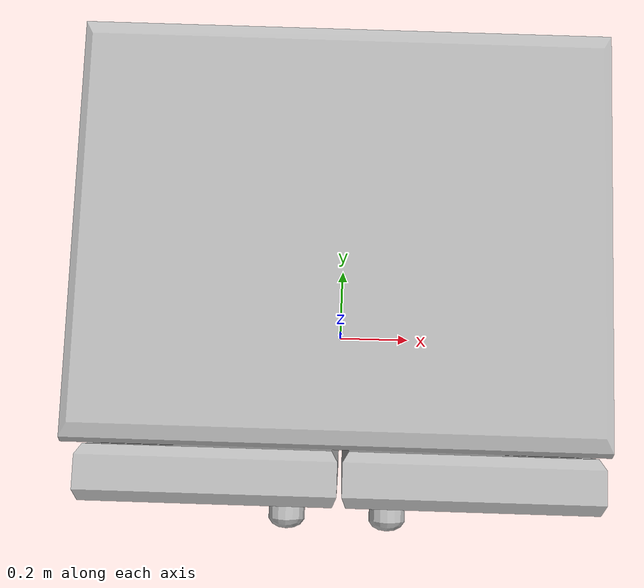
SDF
<?xml version="1.0" ?>
<sdf version="1.5">
  <model name="Armário 2">
    <static>true</static>
    <link name="link">
      <collision name="collision">
        <geometry>
            <mesh>
                <uri>model://armario2/meshes/armario2.stl</uri>
                <scale>1 1 1</scale>
            </mesh>
        </geometry>
      </collision>
      <visual name="visual">
        <geometry>
          <mesh>
            <uri>model://armario2/meshes/armario2.stl</uri>
            <scale>1 1 1</scale>
          </mesh>
        </geometry>
      </visual>
    </link>
    <gazebo reference="link">
      <material>Gazebo/White</material>
    </gazebo>
  </model>
</sdf>
